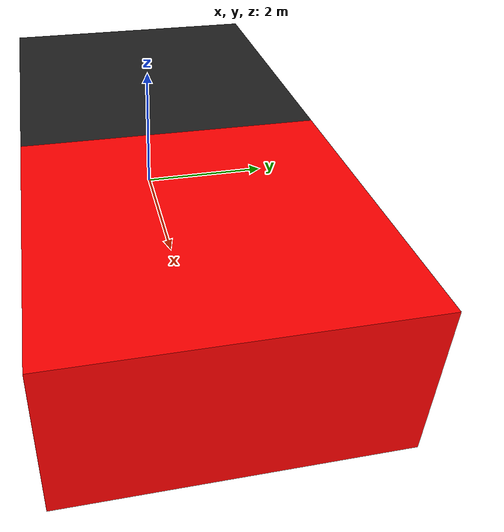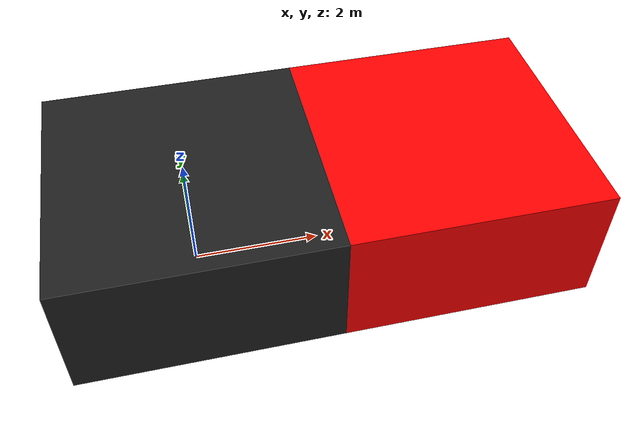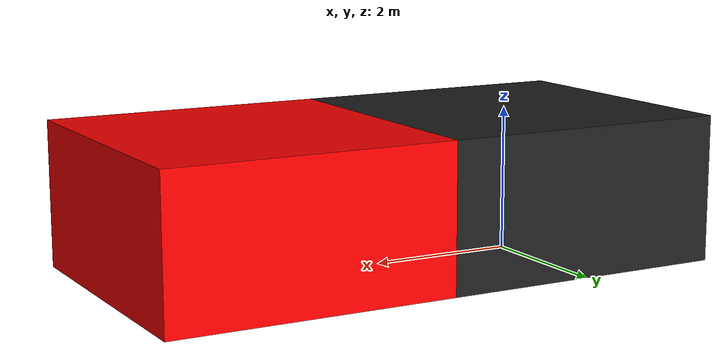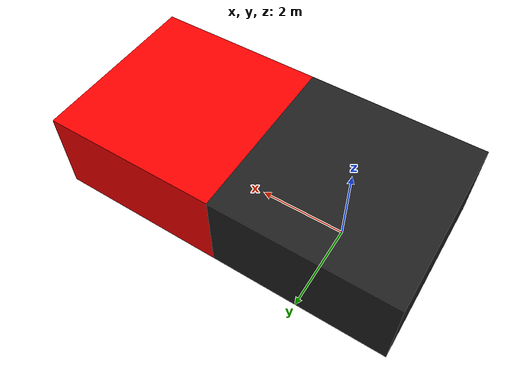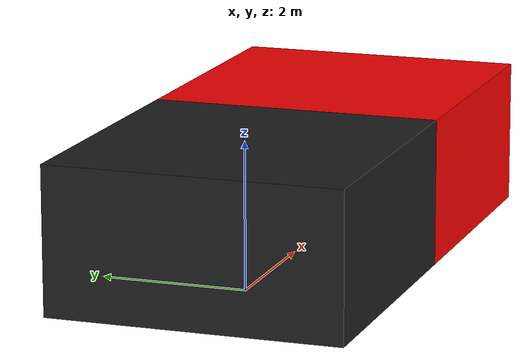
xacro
<?xml version="1.0"?>
<robot xmlns:xacro="http://www.ros.org/wiki/xacro"
 	xmlns:sensor="http://playerstage.sourceforge.net/gazebo/xmlschema/#sensor"
    xmlns:controller="http://playerstage.sourceforge.net/gazebo/xmlschema/#controller"
    xmlns:interface="http://playerstage.sourceforge.net/gazebo/xmlschema/#interface"
    name="myBicycle">
    <xacro:property name="body_x" value="4" />
    <xacro:property name="body_y" value="4" />
    <xacro:property name="body_z" value="2" />

    <link name="base_link">
        <visual>
            <geometry>
                <box size="${body_x} ${body_y} ${body_z}" />
            </geometry>
            <origin rpy="0 0 0 " xyz="0 0 ${body_z/2}"/>
            <material name="black"/>
        </visual>
    </link>

    <link name="head">
        <visual>
            <geometry>
                <box size="${body_x-0.1} ${body_y} ${body_z}" />
            </geometry>
            <origin rpy="0 0 0 " xyz="0 0 ${body_z/2}"/>
            <material name="red">
                <color rgba="1.0 0 0 1.0"/>
            </material>
        </visual>
    </link>

    <joint name="base_to_head" type="fixed">
        <parent link="base_link"/>
        <child link="head"/>
        <origin xyz="${body_x/2+(body_x-0.1)/2} 0  0" rpy="0 0 0"/>
    </joint>
</robot>
